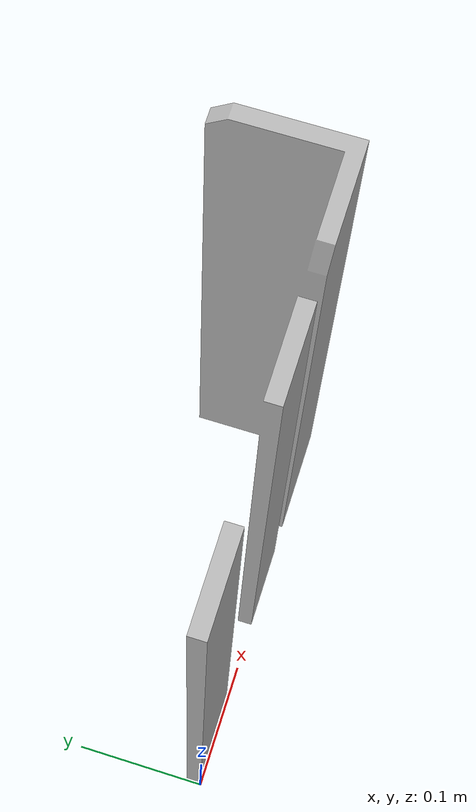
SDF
<?xml version="1.0" ?>
<sdf version="1.5">
  <model name="warning_stripe">
    <static>true</static>
    <link name="warning_stripe_link">
        <collision name="warning_stripe_collision">
         <geometry>
            <mesh>
                <uri>model://warning_stripe/meshes/model.dae</uri>
                <scale>0.5 0.5 0.5</scale>
            </mesh>
        </geometry>
      </collision>

      <visual name="warning_stripe_mesh">
        <cast_shadows>false</cast_shadows>
        <geometry>
            <mesh>
                <uri>model://warning_stripe/meshes/model.dae</uri>
                <scale>0.5 0.5 0.5</scale>
            </mesh>
        </geometry>
      </visual>
    </link>
  </model>
</sdf>
